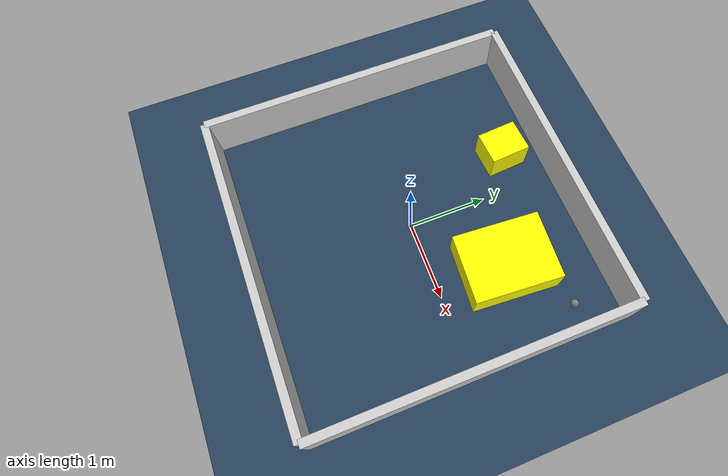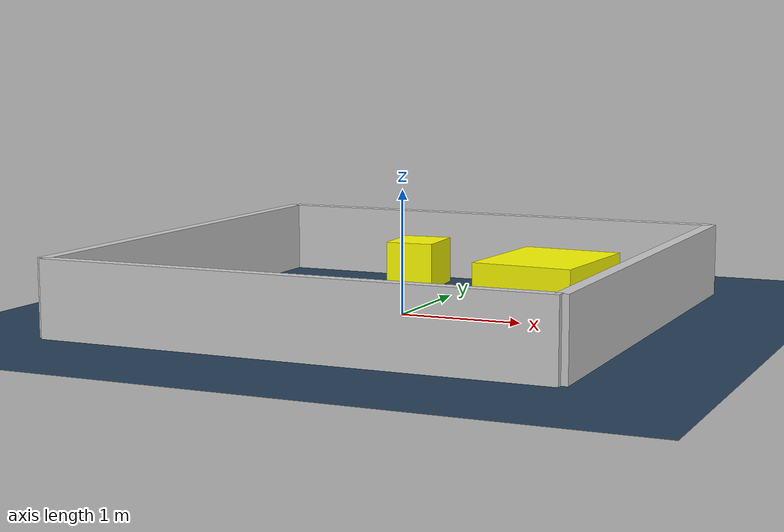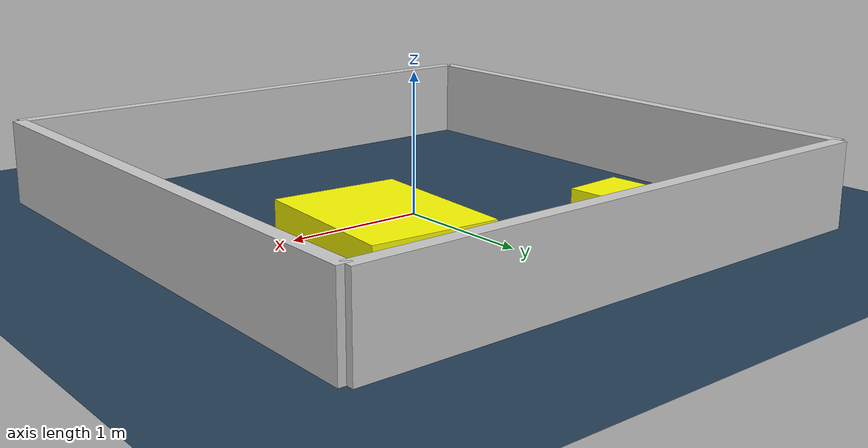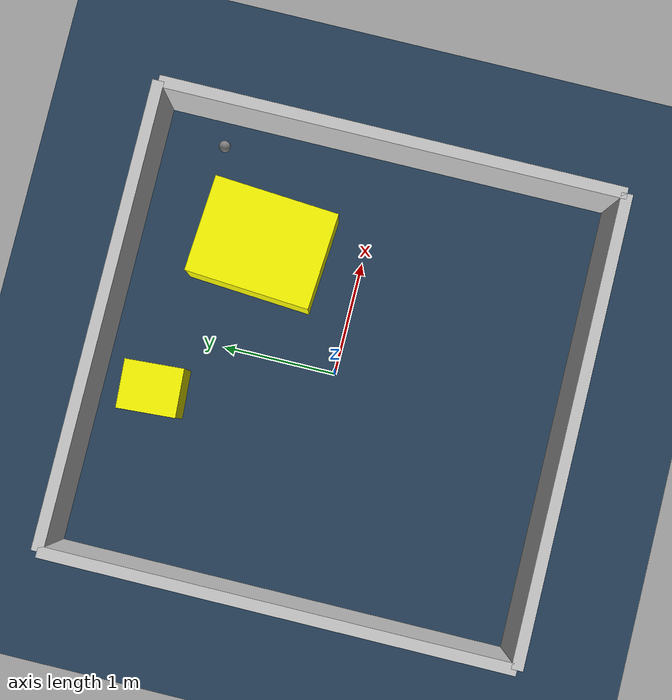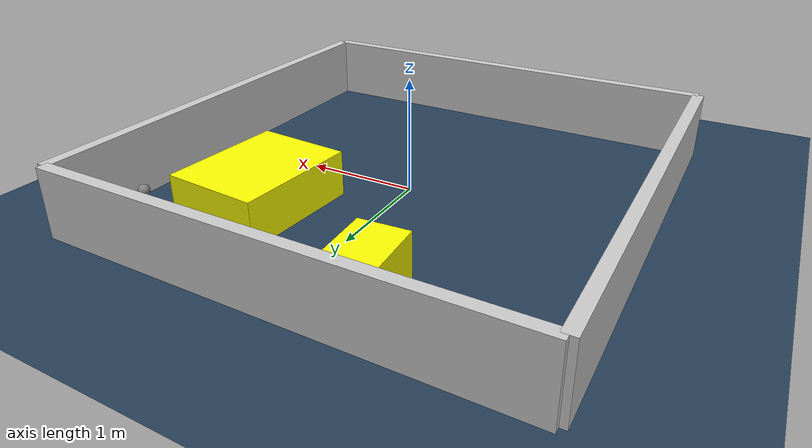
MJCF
<?xml version="1.0" ?>
<mujoco model="generated_environment">
  <option timestep="0.01" integrator="RK4" cone="elliptic"/>
  <default>
    <geom density="1"/>
  </default>
  <asset>
    <texture builtin="gradient" height="3072" rgb1="0.3 0.5 0.7" rgb2="0 0 0" type="skybox" width="512"/>
    <texture builtin="checker" height="300" mark="edge" markrgb="0.8 0.8 0.8" name="groundplane" rgb1="0.2 0.3 0.4" rgb2="0.1 0.2 0.3" type="2d" width="300"/>
    <material name="groundplane" reflectance="0.2" texrepeat="5 5" texture="groundplane" texuniform="true"/>
    <material name="robot" rgba="0.0 1.0 0.0 1"/>
  </asset>
  <worldbody>
    <light dir="0 0 -1" directional="true" pos="0 0 1.5"/>
    <geom condim="4" friction="1.0 0.005 0.001" material="groundplane" name="floor" size="0 0 0.05" type="plane"/>
    <body name="walls">
      <geom name="wall_1" condim="4" pos="-2.0 0.0 0.3" rgba="0.800000011920929 0.800000011920929 0.800000011920929 1.0" size="0.05 2.0 0.3" type="box"/>
      <geom name="wall_2" condim="4" pos="2.0 0.0 0.3" rgba="0.800000011920929 0.800000011920929 0.800000011920929 1.0" size="0.05 2.0 0.3" type="box"/>
      <geom name="wall_3" condim="4" pos="0.0 -2.0 0.3" rgba="0.800000011920929 0.800000011920929 0.800000011920929 1.0" size="2.0 0.05 0.3" type="box"/>
      <geom name="wall_4" condim="4" pos="0.0 2.0 0.3" rgba="0.800000011920929 0.800000011920929 0.800000011920929 1.0" size="2.0 0.05 0.3" type="box"/>
    </body>
    <body name="robot">
      <joint name="joint_x" type="slide" pos="0 0 0" axis="1 0 0"/>
      <joint name="joint_y" type="slide" pos="0 0 0" axis="0 1 0"/>
      <geom name="robot" type="sphere" pos="1.6896995365735745 1.3970330340938553 0.2" size="0.05" mass="5." friction="1.0 0.005 0.0001" condim="4"/>
      <site name="sensor_ball"/>
    </body>
    <body name="obstacle_1_movable">
      <geom name="obstacle_1_movable" condim="4" pos="0.92265517528403 0.8624617773776393 0.2" euler="0 0 355.90341082735483" friction="1.0 0.005 0.001" rgba="1 1 0 1" size="0.42562358222709323 0.5472767545861479 0.2" type="box" mass="0.1"/>
      <joint type="free"/>
    </body>
    <body name="obstacle_2_movable">
      <geom name="obstacle_2_movable" condim="4" pos="-0.4982983919078252 1.473508388490818 0.2" euler="0 0 93.752588474509" friction="1.0 0.005 0.001" rgba="1 1 0 1" size="0.25480413142635966 0.21095101368355051 0.2" type="box" mass="0.1"/>
      <joint type="free"/>
    </body>
  </worldbody>
  <actuator>
    <motor name="actuator_x" joint="joint_x" gear="1" ctrlrange="-1 1"/>
    <motor name="actuator_y" joint="joint_y" gear="1" ctrlrange="-1 1"/>
  </actuator>
</mujoco>
